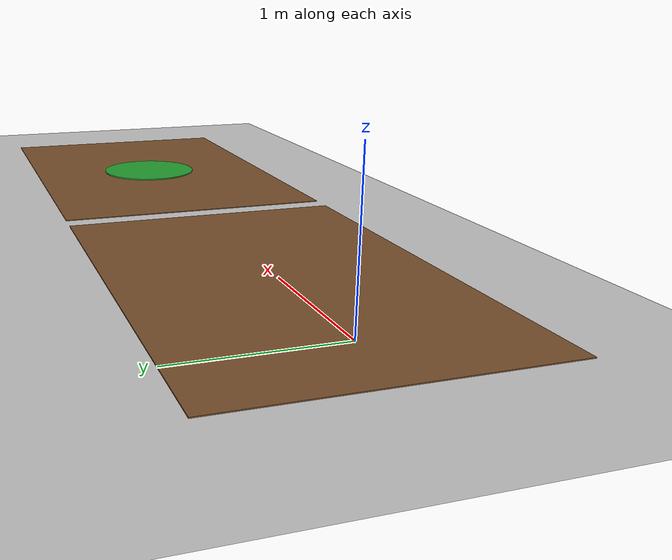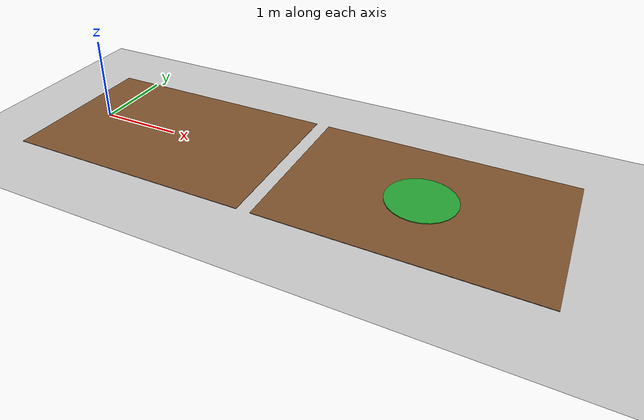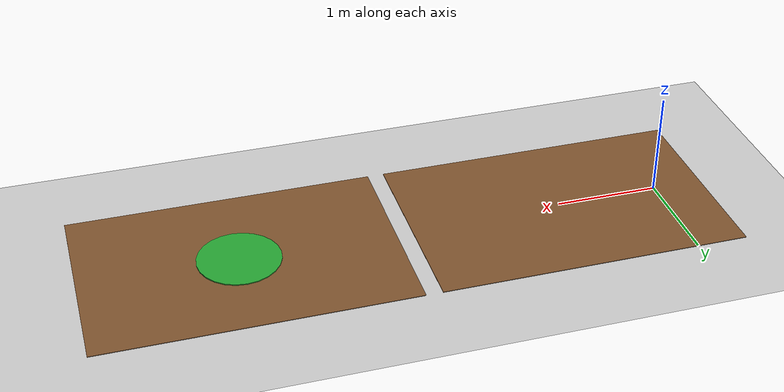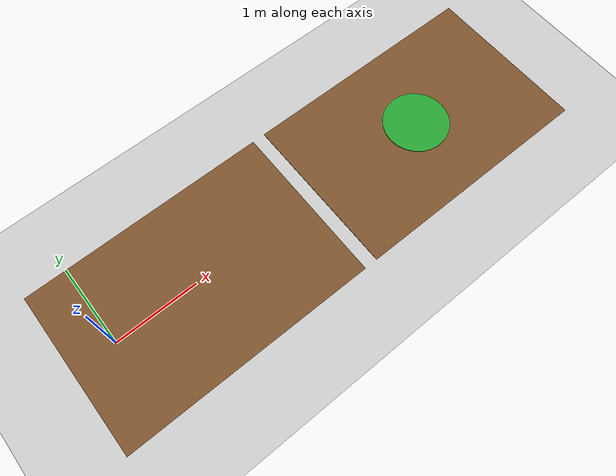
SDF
<?xml version="1.0" ?>
<!-- 由 omni_world.py 自动生成: scene=gap seed=None -->
<sdf version="1.5">
  <world name="gap">
    <physics type="ode">
      <type>world</type>
      <max_step_size>0.001</max_step_size>
      <real_time_update_rate>1000</real_time_update_rate>
      <iters>500</iters>
    </physics>
    <include><uri>model://sun</uri></include>
    <include><uri>model://ground_plane</uri></include>
    <model name="ground_a">
      <static>true</static>
      <pose>1.000 0.000 -0.025 0.0000 0.0000 0.0000</pose>
      <link name="link">
        <collision name="collision">
          <geometry><box><size>3.000 2.000 0.050</size></box></geometry>
          <surface><friction><ode><mu>1.0</mu><mu2>1.0</mu2></ode></friction></surface>
        </collision>
        <visual name="visual">
          <geometry><box><size>3.000 2.000 0.050</size></box></geometry>
          <material><script><uri>file://media/materials/scripts/gazebo.material</uri>
            <name>Gazebo/Brown</name></script></material>
        </visual>
      </link>
    </model>
    <model name="ground_b">
      <static>true</static>
      <pose>4.160 0.000 -0.025 0.0000 0.0000 0.0000</pose>
      <link name="link">
        <collision name="collision">
          <geometry><box><size>3.000 2.000 0.050</size></box></geometry>
          <surface><friction><ode><mu>1.0</mu><mu2>1.0</mu2></ode></friction></surface>
        </collision>
        <visual name="visual">
          <geometry><box><size>3.000 2.000 0.050</size></box></geometry>
          <material><script><uri>file://media/materials/scripts/gazebo.material</uri>
            <name>Gazebo/Brown</name></script></material>
        </visual>
      </link>
    </model>
    <model name="goal">
      <static>true</static>
      <pose>4.160 0.000 0.005 0 0 0</pose>
      <link name="link">
        <visual name="visual">
          <geometry><cylinder><radius>0.400</radius><length>0.01</length></cylinder></geometry>
          <material><script><uri>file://media/materials/scripts/gazebo.material</uri>
            <name>Gazebo/Green</name></script></material>
        </visual>
      </link>
    </model>

  </world>
</sdf>
